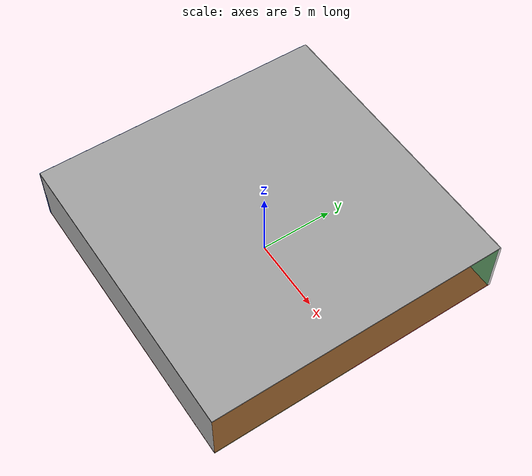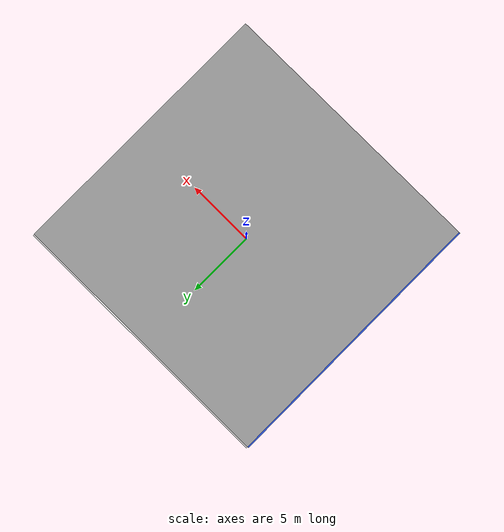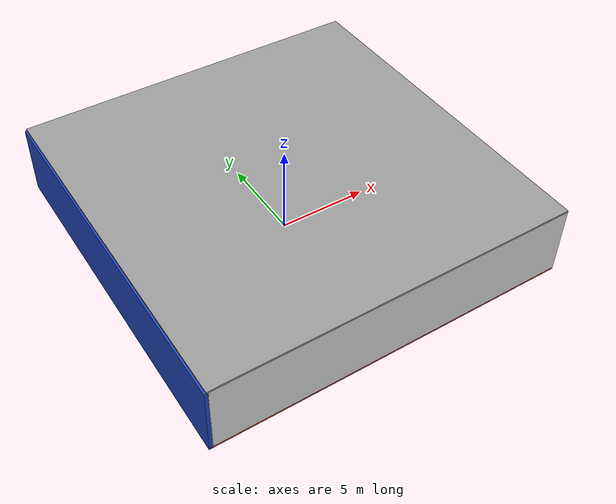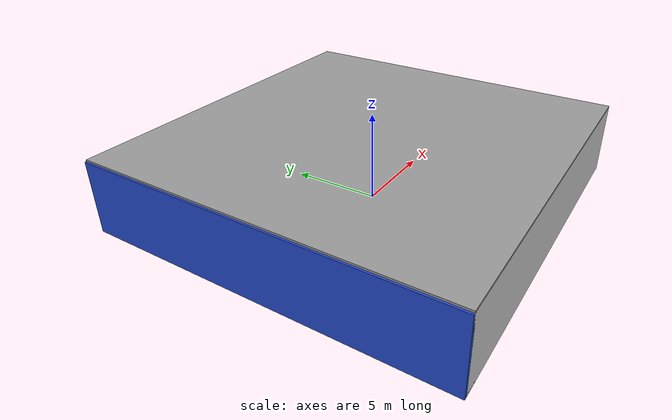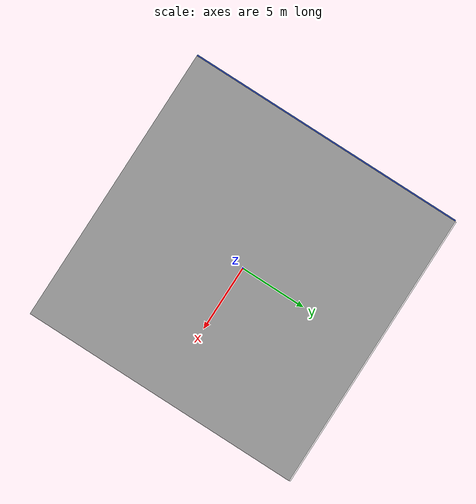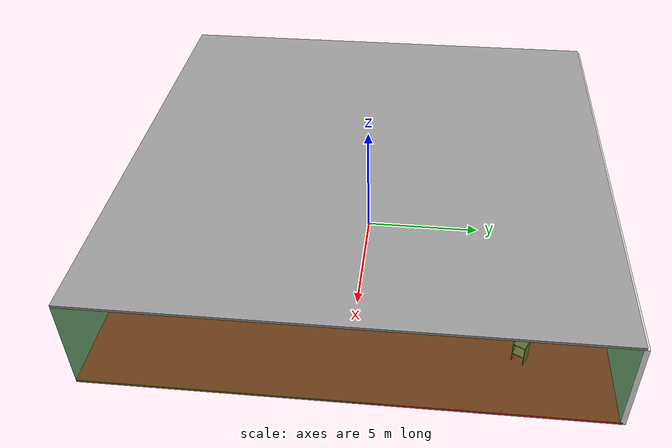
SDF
<sdf version="1.4">
 <world name="default">
  <physics type="ode">
   <max_step_size>0.001</max_step_size>
   <real_time_factor>1</real_time_factor>
   <real_time_update_rate>1000</real_time_update_rate>
   <gravity>0 0 -9.8</gravity>
  </physics>
  <scene><ambient>0.4 0.4 0.4 1</ambient><background>0.7 0.7 0.7 1</background><shadows>1</shadows></scene>
  <model name="Surrounding">
   <static>1</static>
   <link name="Ceiling">
    <collision name="Ceiling_Collision"><geometry><box><size>20 20 0.1</size></box></geometry></collision>
    <visual name="Ceiling_Visual">
     <geometry><box><size>20 20 0.1</size></box></geometry>
     <material>
      <script><uri>file://media/materials/scripts/gazebo.material</uri><name>Gazebo/GreyGradientSky</name></script>
     </material>
    </visual>
    <pose>0 0 4.05 0 0 0</pose>
   </link>
   <link name="Wall_South">
    <collision name="Wall_South_Collision">
     <geometry><box><size>20 0 4</size></box></geometry>
     <pose>0 0 2 0 -0 0</pose>
    </collision>
    <visual name="Wall_South_Visual">
     <pose>0 0 2 0 -0 0</pose>
     <geometry><box><size>20 0 4</size></box></geometry>
     <material>
      <script><uri>file://media/materials/scripts/gazebo.material</uri><name>Gazebo/WhiteGlow</name></script>
     </material>
    </visual>
    <velocity_decay><linear>0</linear><angular>0</angular></velocity_decay>
    <pose>0 -10 0 0 -0 0</pose>
   </link>
   <link name="Wall_East">
    <collision name="Wall_21_Collision">
     <geometry><box><size>20 0 4</size></box></geometry>
     <pose>0 0 2 0 -0 0</pose>
    </collision>
    <visual name="Wall_21_Visual">
     <pose>0 0 2 0 -0 0</pose>
     <geometry><box><size>20 0 4</size></box></geometry>
     <material>
      <script><uri>file://media/materials/scripts/gazebo.material</uri><name>Gazebo/GreenTransparent</name></script>
     </material>
    </visual>
    <velocity_decay><linear>0</linear><angular>0</angular></velocity_decay>
    <pose>10 0 0 0 -0 1.5708</pose>
   </link>
   <link name="Wall_North">
    <collision name="Wall_22_Collision">
     <geometry><box><size>20 0.2 4</size></box></geometry>
     <pose>0 0 2 0 -0 0</pose>
    </collision>
    <visual name="Wall_22_Visual">
     <pose>0 0 2 0 -0 0</pose>
     <geometry><box><size>20 0.2 4</size></box></geometry>
     <material>
      <script><uri>file://media/materials/scripts/gazebo.material</uri><name>Gazebo/White</name></script>
     </material>
    </visual>
    <velocity_decay><linear>0</linear><angular>0</angular></velocity_decay>
    <pose>0 10 0 0 -0 0</pose>
   </link>
   <link name="Wall_West">
    <collision name="Wall_23_Collision">
     <geometry><box><size>20 0.2 4</size></box></geometry>
     <pose>0 0 2 0 -0 0</pose>
    </collision>
    <visual name="Wall_23_Visual">
     <pose>0 0 2 0 -0 0</pose>
     <geometry><box><size>20 0.2 4</size></box></geometry>
     <material>
      <script><uri>file://media/materials/scripts/gazebo.material</uri><name>Gazebo/Blue</name></script>
     </material>
    </visual>
    <velocity_decay><linear>0</linear><angular>0</angular></velocity_decay>
    <pose>-10 0 0 0 0 -1.5708</pose>
   </link>
   <link name="Ground_link">
    <collision name="collision">
     <pose>0 0 .05 0 -0 0</pose>
     <geometry><box><size>20 20 0.1</size></box></geometry>
    </collision>
    <visual name="visual">
     <pose>0 0 .05 0 -0 0</pose>
     <geometry><box><size>20 20 0.1</size></box></geometry>
     <material>
      <script><uri>file://media/materials/scripts/gazebo.material</uri><name>Gazebo/RedGlow</name></script>
     </material>
    </visual>
   </link>
   <static>1</static>
  </model>
  <spherical_coordinates>
   <surface_model>EARTH_WGS84</surface_model>
   <latitude_deg>0</latitude_deg>
   <longitude_deg>0</longitude_deg>
   <elevation>0</elevation>
   <heading_deg>0</heading_deg>
  </spherical_coordinates>
  <light name="lightball_0" type="diffuse">
   <diffuse>0.8 0.8 0.8 1</diffuse>
   <specular>0.2 0.2 0.2 1</specular>
   <attenuation>
    <range>100</range>
    <constant>0.7</constant>
    <linear>0.01</linear>
    <quadratic>0.001</quadratic>
   </attenuation>
   <direction>-0.5 0.1 -0.9</direction>
   <pose>-0.313542443565 8.04692762111 3.10506317729 0 0 0</pose>
  </light>
  <light name="lightball_1" type="diffuse">
   <diffuse>0.8 0.8 0.8 1</diffuse>
   <specular>0.2 0.2 0.2 1</specular>
   <attenuation>
    <range>100</range>
    <constant>0.7</constant>
    <linear>0.01</linear>
    <quadratic>0.001</quadratic>
   </attenuation>
   <direction>-0.5 0.1 -0.9</direction>
   <pose>4.25946860256 9.10722714429 0.526949015241 0 0 0</pose>
  </light>
  <light name="lightball_2" type="diffuse">
   <diffuse>0.8 0.8 0.8 1</diffuse>
   <specular>0.2 0.2 0.2 1</specular>
   <attenuation>
    <range>100</range>
    <constant>0.7</constant>
    <linear>0.01</linear>
    <quadratic>0.001</quadratic>
   </attenuation>
   <direction>-0.5 0.1 -0.9</direction>
   <pose>3.43663517441 8.94560358174 3.49066342158 0 0 0</pose>
  </light>
  <light name="lightball_3" type="diffuse">
   <diffuse>0.8 0.8 0.8 1</diffuse>
   <specular>0.2 0.2 0.2 1</specular>
   <attenuation>
    <range>100</range>
    <constant>0.7</constant>
    <linear>0.01</linear>
    <quadratic>0.001</quadratic>
   </attenuation>
   <direction>-0.5 0.1 -0.9</direction>
   <pose>5.62677740275 -6.78077019739 2.43281509956 0 0 0</pose>
  </light>
  <include><uri>model://table</uri><pose>-2.64559828957 -4.18986483839 0 0 0 0.940466920374</pose></include>
  <include><uri>model://cabinet</uri><pose>-1.55120521028 4.86416889326 0 0 0 0.688368181807</pose></include>
  <include><uri>model://cabinet</uri><pose>-1.33085371792 6.67256547355 0 0 0 2.35946299915</pose></include>
  <include>
   <uri>model://construction_cone</uri>
   <pose>1.81180015782 7.02313975129 0 0 0 2.23748424042</pose>
  </include>
  <include><uri>model://cabinet</uri><pose>3.60399744882 -3.38332057793 0 0 0 2.86150471771</pose></include>
  <include><uri>model://cabinet</uri><pose>7.44687462511 6.48398748146 0 0 0 2.66445189825</pose></include>
 </world>
</sdf>

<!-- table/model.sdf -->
<sdf version="1.5">
  <model name="table">
    <static>true</static>
    <link name="link">
      <collision name="surface">
        <pose>0 0 1.0 0 0 0</pose>
        <geometry>
          <box>
            <size>1.5 0.8 0.03</size>
          </box>
        </geometry>
        <surface>
          <friction>
            <ode>
              <mu>0.6</mu>
              <mu2>0.6</mu2>
            </ode>
          </friction>
        </surface>
      </collision>
      <visual name="visual1">
        <pose>0 0 1.0 0 0 0</pose>
        <geometry>
          <box>
            <size>1.5 0.8 0.03</size>
          </box>
        </geometry>
        <material>
          <script>
            <uri>model://media/materials/scripts/gazebo.material</uri>
            <name>Gazebo/Wood</name>
          </script>
        </material>
      </visual>
      <collision name="front_left_leg">
        <pose>0.68 0.38 0.5 0 0 0</pose>
        <geometry>
          <cylinder>
            <radius>0.02</radius>
            <length>1.0</length>
          </cylinder>
        </geometry>
      </collision>
      <visual name="front_left_leg">
        <pose>0.68 0.38 0.5 0 0 0</pose>
        <geometry>
          <cylinder>
            <radius>0.02</radius>
            <length>1.0</length>
          </cylinder>
        </geometry>
        <material>
          <script>
            <uri>model://media/materials/scripts/gazebo.material</uri>
            <name>Gazebo/Grey</name>
          </script>
        </material>
      </visual>
      <collision name="front_right_leg">
        <pose>0.68 -0.38 0.5 0 0 0</pose>
        <geometry>
          <cylinder>
            <radius>0.02</radius>
            <length>1.0</length>
          </cylinder>
        </geometry>
      </collision>
      <visual name="front_right_leg">
        <pose>0.68 -0.38 0.5 0 0 0</pose>
        <geometry>
          <cylinder>
            <radius>0.02</radius>
            <length>1.0</length>
          </cylinder>
        </geometry>
        <material>
          <script>
            <uri>model://media/materials/scripts/gazebo.material</uri>
            <name>Gazebo/Grey</name>
          </script>
        </material>
      </visual>
      <collision name="back_right_leg">
        <pose>-0.68 -0.38 0.5 0 0 0</pose>
        <geometry>
          <cylinder>
            <radius>0.02</radius>
            <length>1.0</length>
          </cylinder>
        </geometry>
      </collision>
      <visual name="back_right_leg">
        <pose>-0.68 -0.38 0.5 0 0 0</pose>
        <geometry>
          <cylinder>
            <radius>0.02</radius>
            <length>1.0</length>
          </cylinder>
        </geometry>
        <material>
          <script>
            <uri>model://media/materials/scripts/gazebo.material</uri>
            <name>Gazebo/Grey</name>
          </script>
        </material>
      </visual>
      <collision name="back_left_leg">
        <pose>-0.68 0.38 0.5 0 0 0</pose>
        <geometry>
          <cylinder>
            <radius>0.02</radius>
            <length>1.0</length>
          </cylinder>
        </geometry>
      </collision>
      <visual name="back_left_leg">
        <pose>-0.68 0.38 0.5 0 0 0</pose>
        <geometry>
          <cylinder>
            <radius>0.02</radius>
            <length>1.0</length>
          </cylinder>
        </geometry>
        <material>
          <script>
            <uri>model://media/materials/scripts/gazebo.material</uri>
            <name>Gazebo/Grey</name>
          </script>
        </material>
      </visual>
    </link>
  </model>
</sdf>

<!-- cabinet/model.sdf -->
<sdf version="1.5">
  <model name="cabinet">
    <static>true</static>
    <link name="cabinet_bottom_plate">
      <inertial>
        <pose>0 0 -1 0 0 0</pose>
        <inertia>
          <ixx>2.050000</ixx>
          <ixy>0</ixy>
          <ixz>0</ixz>
          <iyy>2.050000</iyy>
          <iyz>0</iyz>
          <izz>2.050000</izz>
        </inertia>
        <mass>25.000000</mass>
      </inertial>
      <collision name="cabinet_bottom_plate_geom">
        <pose>0 0 0.010000 0 0 0</pose>
        <geometry>
          <box>
            <size>0.450000 0.450000 0.020000</size>
          </box>
        </geometry>
      </collision>
      <visual name="cabinet_bottom_plate_geom_visual">
        <pose>0 0 0.010000 0 0 0</pose>
        <geometry>
          <box>
            <size>0.450000 0.450000 0.020000</size>
          </box>
        </geometry>
        <material>
          <script>
            <uri>model://media/materials/scripts/gazebo.material</uri>
            <name>Gazebo/Wood</name>
          </script>
        </material>
      </visual>
      <collision name="cabinet_bottom_plate_geom_cabinet_back_plate">
        <pose>0.235000 0 0.510000 0 0 0</pose>
        <geometry>
          <box>
            <size>0.020000 0.450000 1.020000</size>
          </box>
        </geometry>
      </collision>
      <visual name="cabinet_bottom_plate_geom_cabinet_back_plate_visual">
        <pose>0.235000 0 0.510000 0 0 0</pose>
        <geometry>
          <box>
            <size>0.020000 0.450000 1.020000</size>
          </box>
        </geometry>
        <material>
          <script>
            <uri>model://media/materials/scripts/gazebo.material</uri>
            <name>Gazebo/Wood</name>
          </script>
        </material>
      </visual>
      <collision name="cabinet_bottom_plate_geom_cabinet_left_plate">
        <pose>0 0.235000 0.510000 0 0 0</pose>
        <geometry>
          <box>
            <size>0.450000 0.020000 1.020000</size>
          </box>
        </geometry>
      </collision>
      <visual name="cabinet_bottom_plate_geom_cabinet_left_plate_visual">
        <pose>0 0.235000 0.510000 0 0 0</pose>
        <geometry>
          <box>
            <size>0.450000 0.020000 1.020000</size>
          </box>
        </geometry>
        <material>
          <script>
            <uri>model://media/materials/scripts/gazebo.material</uri>
            <name>Gazebo/Wood</name>
          </script>
        </material>
      </visual>
      <collision name="cabinet_bottom_plate_geom_cabinet_middle_plate">
        <pose>0 0 0.510000 0 0 0</pose>
        <geometry>
          <box>
            <size>0.450000 0.450000 0.020000</size>
          </box>
        </geometry>
      </collision>
      <visual name="cabinet_bottom_plate_geom_cabinet_middle_plate_visual">
        <pose>0 0 0.510000 0 0 0</pose>
        <geometry>
          <box>
            <size>0.450000 0.450000 0.020000</size>
          </box>
        </geometry>
        <material>
          <script>
            <uri>model://media/materials/scripts/gazebo.material</uri>
            <name>Gazebo/Wood</name>
          </script>
        </material>
      </visual>
      <collision name="cabinet_bottom_plate_geom_cabinet_right_plate">
        <pose>0 -0.235000 0.510000 0 0 0</pose>
        <geometry>
          <box>
            <size>0.450000 0.020000 1.020000</size>
          </box>
        </geometry>
      </collision>
      <visual name="cabinet_bottom_plate_geom_cabinet_right_plate_visual">
        <pose>0 -0.235000 0.510000 0 0 0</pose>
        <geometry>
          <box>
            <size>0.450000 0.020000 1.020000</size>
          </box>
        </geometry>
        <material>
          <script>
            <uri>model://media/materials/scripts/gazebo.material</uri>
            <name>Gazebo/Wood</name>
          </script>
        </material>
      </visual>
      <collision name="cabinet_bottom_plate_geom_cabinet_top_plate">
        <pose>0 0 1.010000 0 0 0</pose>
        <geometry>
          <box>
            <size>0.450000 0.450000 0.020000</size>
          </box>
        </geometry>
      </collision>
      <visual name="cabinet_bottom_plate_geom_cabinet_top_plate_visual">
        <pose>0 0 1.010000 0 0 0</pose>
        <geometry>
          <box>
            <size>0.450000 0.450000 0.020000</size>
          </box>
        </geometry>
        <material>
          <script>
            <uri>model://media/materials/scripts/gazebo.material</uri>
            <name>Gazebo/Wood</name>
          </script>
        </material>
      </visual>
    </link>
  </model>
</sdf>

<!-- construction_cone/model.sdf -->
<sdf version="1.5">
  <model name="Construction Cone">
    <link name="link">
      <collision name="collision">
        <geometry>
          <mesh>
            <scale>10 10 10</scale>
            <uri>file://isr-testbed/construction_cone/meshes/construction_cone.dae</uri>
          </mesh>
        </geometry>
      </collision>
      <visual name="visual">
        <geometry>
          <mesh>
            <scale>10 10 10</scale>
            <uri>file://isr-testbed/construction_cone/meshes/construction_cone.dae</uri>
          </mesh>
        </geometry>
      </visual>
    </link>
  </model>
</sdf>
